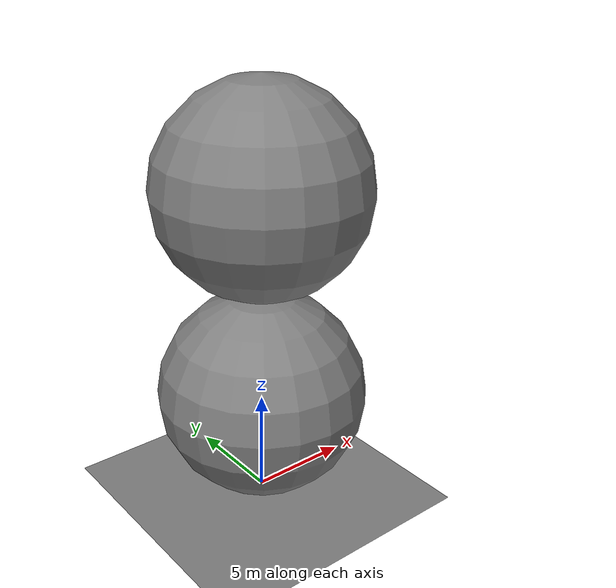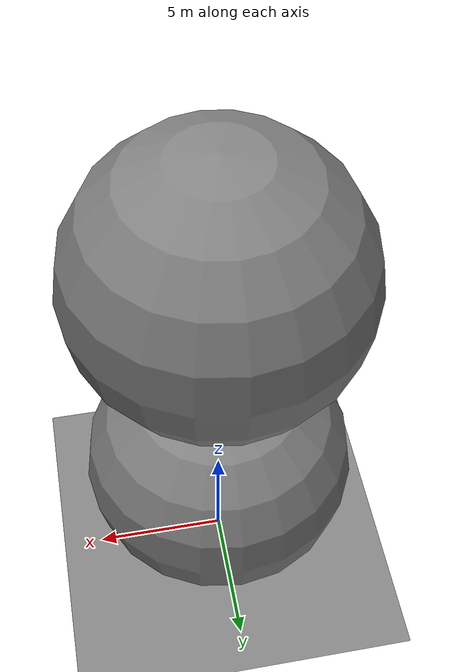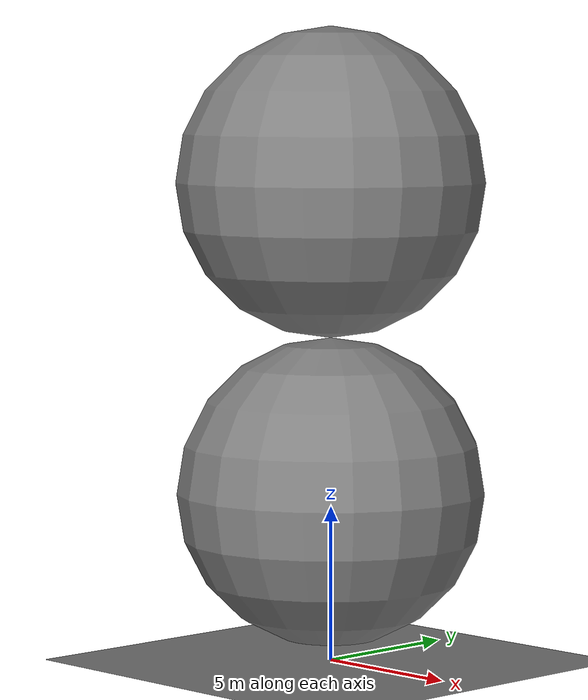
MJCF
<mujoco model="dynamic_stack">
            <option gravity="0 0 -9810" timestep="0.002"/>
            <worldbody>
                <geom name="floor" type="plane" size="40 40 0.1" solref="0.005 1"/>
                <body name="lower" pos="0 0 5.5">
                    <joint type="free"/>
                    <inertial pos="0 0 0" mass="0.000655" diaginertia="0.00655 0.00655 0.00655"/>
                    <geom type="sphere" size="5" solref="0.005 1"/>
                </body>
                <body name="upper" pos="0 0 15.5">
                    <joint type="free"/>
                    <inertial pos="0 0 0" mass="0.000655" diaginertia="0.00655 0.00655 0.00655"/>
                    <geom type="sphere" size="5" solref="0.005 1"/>
                </body>
            </worldbody>
        </mujoco>
